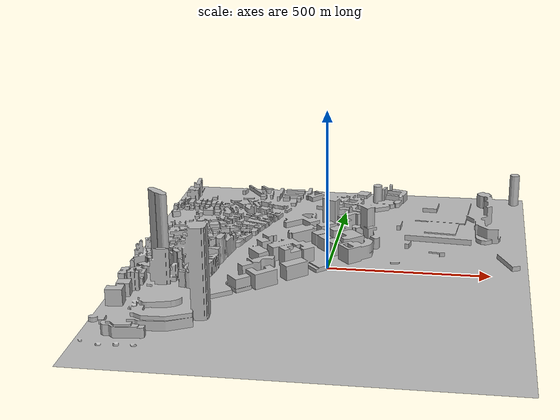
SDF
<?xml version="1.0" ?>
<sdf version="1.5">
  <model name="hong_kong">
    <pose>0 0 0 0 0 0</pose>
    <static>true</static>
    <link name="terrain">
      <visual name="visual">
        <geometry>
          <mesh><uri>model://hong_kong/media/terrain.dae</uri></mesh>
        </geometry>
        <pose>0 0 -3.5 0 0 0</pose>
      </visual>
      <collision name="collision">
        <geometry>
          <mesh><uri>model://hong_kong/media/terrain.dae</uri></mesh>
        </geometry>
        <pose>0 0 -3.5 0 0 0</pose>
      </collision>
    </link>

    <link name="buildings">
      <visual name="visual">
        <geometry>
          <mesh><uri>model://hong_kong/media/buildings.dae</uri></mesh>
        </geometry>
        <pose>0 0 -3.5 0 0 0</pose>
      </visual>
      <collision name="collision">
        <geometry>
          <mesh><uri>model://hong_kong/media/buildings.dae</uri></mesh>
        </geometry>
        <pose>0 0 -3.5 0 0 0</pose>
      </collision>
    </link>
  </model>
</sdf>
